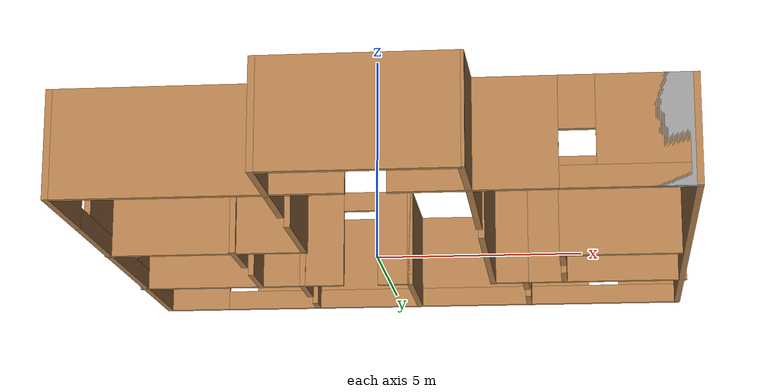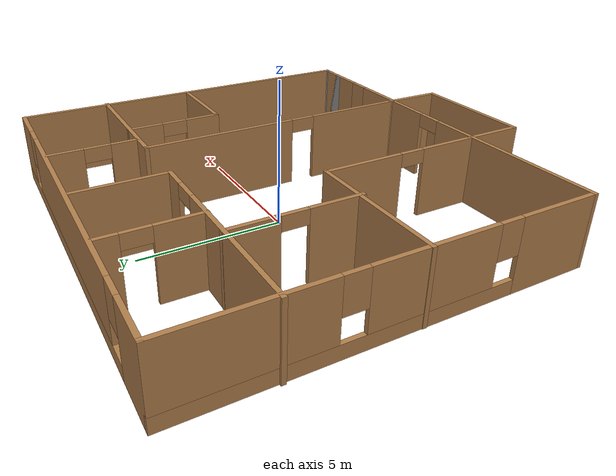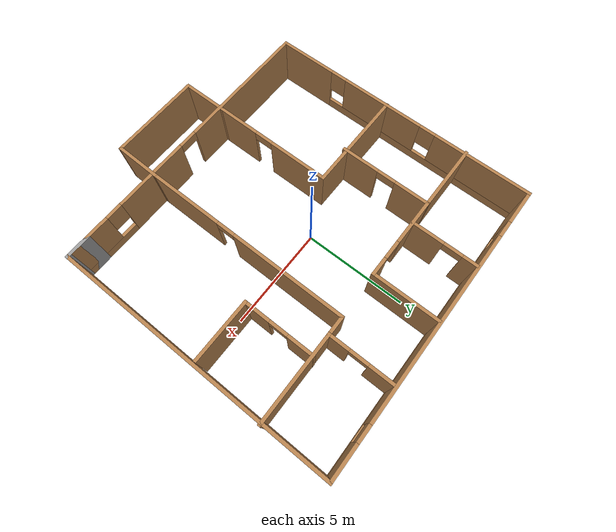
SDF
<?xml version='1.0'?>
<sdf version='1.7'>
  <model name='room2'>
    <pose>0.506721 -0.985056 0 0 -0 0</pose>
    <link name='Wall_0'>
      <pose>-0.12272 -5.67678 0 0 -0 0</pose>
      <visual name='Wall_0_Visual_0'>
        <pose>-3.68769 0 1.25 0 -0 0</pose>
        <geometry>
          <box>
            <size>6.62462 0.15 2.5</size>
          </box>
        </geometry>
        <material>
          <script>
            <uri>file://media/materials/scripts/gazebo.material</uri>
            <name>Gazebo/Wood</name>
          </script>
          <ambient>1 1 1 1</ambient>
        </material>
        <meta>
          <layer>0</layer>
        </meta>
      </visual>
      <collision name='Wall_0_Collision_0'>
        <geometry>
          <box>
            <size>6.62462 0.15 2.5</size>
          </box>
        </geometry>
        <pose>-3.68769 0 1.25 0 -0 0</pose>
      </collision>
      <visual name='Wall_0_Visual_1'>
        <pose>2.3633 0 1.25 0 -0 0</pose>
        <geometry>
          <box>
            <size>3.67735 0.15 2.5</size>
          </box>
        </geometry>
        <material>
          <script>
            <uri>file://media/materials/scripts/gazebo.material</uri>
            <name>Gazebo/Wood</name>
          </script>
          <ambient>1 1 1 1</ambient>
        </material>
        <meta>
          <layer>0</layer>
        </meta>
      </visual>
      <collision name='Wall_0_Collision_1'>
        <geometry>
          <box>
            <size>3.67735 0.15 2.5</size>
          </box>
        </geometry>
        <pose>2.3633 0 1.25 0 -0 0</pose>
      </collision>
      <visual name='Wall_0_Visual_2'>
        <pose>5.60099 0 0.25 0 -0 0</pose>
        <geometry>
          <box>
            <size>2.79802 0.15 0.5</size>
          </box>
        </geometry>
        <material>
          <script>
            <uri>file://media/materials/scripts/gazebo.material</uri>
            <name>Gazebo/Wood</name>
          </script>
          <ambient>1 1 1 1</ambient>
        </material>
        <meta>
          <layer>0</layer>
        </meta>
      </visual>
      <collision name='Wall_0_Collision_2'>
        <geometry>
          <box>
            <size>2.79802 0.15 0.5</size>
          </box>
        </geometry>
        <pose>5.60099 0 0.25 0 -0 0</pose>
      </collision>
      <visual name='Wall_0_Visual_3'>
        <pose>6.00099 0 1.5 0 -0 0</pose>
        <geometry>
          <box>
            <size>1.99802 0.15 2</size>
          </box>
        </geometry>
        <material>
          <script>
            <uri>file://media/materials/scripts/gazebo.material</uri>
            <name>Gazebo/Wood</name>
          </script>
          <ambient>1 1 1 1</ambient>
        </material>
        <meta>
          <layer>0</layer>
        </meta>
      </visual>
      <collision name='Wall_0_Collision_3'>
        <geometry>
          <box>
            <size>1.99802 0.15 2</size>
          </box>
        </geometry>
        <pose>6.00099 0 1.5 0 -0 0</pose>
      </collision>
      <visual name='Wall_0_Visual_4'>
        <pose>4.60198 0 1.9 0 -0 0</pose>
        <geometry>
          <box>
            <size>0.8 0.15 1.2</size>
          </box>
        </geometry>
        <material>
          <script>
            <uri>file://media/materials/scripts/gazebo.material</uri>
            <name>Gazebo/Wood</name>
          </script>
          <ambient>1 1 1 1</ambient>
        </material>
        <meta>
          <layer>0</layer>
        </meta>
      </visual>
      <collision name='Wall_0_Collision_4'>
        <geometry>
          <box>
            <size>0.8 0.15 1.2</size>
          </box>
        </geometry>
        <pose>4.60198 0 1.9 0 -0 0</pose>
      </collision>
      <visual name='Wall_0_Visual_5'>
        <pose>0.074622 0 2.25 0 -0 0</pose>
        <geometry>
          <box>
            <size>0.9 0.15 0.5</size>
          </box>
        </geometry>
        <material>
          <script>
            <uri>file://media/materials/scripts/gazebo.material</uri>
            <name>Gazebo/Wood</name>
          </script>
          <ambient>1 1 1 1</ambient>
        </material>
        <meta>
          <layer>0</layer>
        </meta>
      </visual>
      <collision name='Wall_0_Collision_5'>
        <geometry>
          <box>
            <size>0.9 0.15 0.5</size>
          </box>
        </geometry>
        <pose>0.074622 0 2.25 0 -0 0</pose>
      </collision>
    </link>
    <link name='Wall_10'>
      <pose>-2.8597 6.03777 0 0 -0 1.5708</pose>
      <visual name='Wall_10_Visual_0'>
        <pose>-0.82144 0 1.25 0 -0 0</pose>
        <geometry>
          <box>
            <size>1.60712 0.15 2.5</size>
          </box>
        </geometry>
        <material>
          <script>
            <uri>file://media/materials/scripts/gazebo.material</uri>
            <name>Gazebo/Wood</name>
          </script>
          <ambient>1 1 1 1</ambient>
        </material>
        <meta>
          <layer>0</layer>
        </meta>
      </visual>
      <collision name='Wall_10_Collision_0'>
        <geometry>
          <box>
            <size>1.60712 0.15 2.5</size>
          </box>
        </geometry>
        <pose>-0.82144 0 1.25 0 -0 0</pose>
      </collision>
      <visual name='Wall_10_Visual_1'>
        <pose>1.25356 0 1.25 0 -0 0</pose>
        <geometry>
          <box>
            <size>0.74288 0.15 2.5</size>
          </box>
        </geometry>
        <material>
          <script>
            <uri>file://media/materials/scripts/gazebo.material</uri>
            <name>Gazebo/Wood</name>
          </script>
          <ambient>1 1 1 1</ambient>
        </material>
        <meta>
          <layer>0</layer>
        </meta>
      </visual>
      <collision name='Wall_10_Collision_1'>
        <geometry>
          <box>
            <size>0.74288 0.15 2.5</size>
          </box>
        </geometry>
        <pose>1.25356 0 1.25 0 -0 0</pose>
      </collision>
      <visual name='Wall_10_Visual_2'>
        <pose>0.43212 0 2.25 0 -0 0</pose>
        <geometry>
          <box>
            <size>0.9 0.15 0.5</size>
          </box>
        </geometry>
        <material>
          <script>
            <uri>file://media/materials/scripts/gazebo.material</uri>
            <name>Gazebo/Wood</name>
          </script>
          <ambient>1 1 1 1</ambient>
        </material>
        <meta>
          <layer>0</layer>
        </meta>
      </visual>
      <collision name='Wall_10_Collision_2'>
        <geometry>
          <box>
            <size>0.9 0.15 0.5</size>
          </box>
        </geometry>
        <pose>0.43212 0 2.25 0 -0 0</pose>
      </collision>
    </link>
    <link name='Wall_12'>
      <collision name='Wall_12_Collision'>
        <geometry>
          <box>
            <size>5 0.15 2.5</size>
          </box>
        </geometry>
        <pose>0 0 1.25 0 -0 0</pose>
      </collision>
      <visual name='Wall_12_Visual'>
        <pose>0 0 1.25 0 -0 0</pose>
        <geometry>
          <box>
            <size>5 0.15 2.5</size>
          </box>
        </geometry>
        <material>
          <script>
            <uri>file://media/materials/scripts/gazebo.material</uri>
            <name>Gazebo/Wood</name>
          </script>
          <ambient>1 1 1 1</ambient>
        </material>
        <meta>
          <layer>0</layer>
        </meta>
      </visual>
      <pose>-4.64447 0.278003 0 0 -0 0</pose>
    </link>
    <link name='Wall_13'>
      <pose>-2.21947 -2.647 0 0 -0 -1.5708</pose>
      <visual name='Wall_13_Visual_0'>
        <pose>-1.52666 0 1.25 0 -0 0</pose>
        <geometry>
          <box>
            <size>2.94667 0.15 2.5</size>
          </box>
        </geometry>
        <material>
          <script>
            <uri>file://media/materials/scripts/gazebo.material</uri>
            <name>Gazebo/Wood</name>
          </script>
          <ambient>1 1 1 1</ambient>
        </material>
        <meta>
          <layer>0</layer>
        </meta>
      </visual>
      <collision name='Wall_13_Collision_0'>
        <geometry>
          <box>
            <size>2.94667 0.15 2.5</size>
          </box>
        </geometry>
        <pose>-1.52666 0 1.25 0 -0 0</pose>
      </collision>
      <visual name='Wall_13_Visual_1'>
        <pose>1.92334 0 1.25 0 -0 0</pose>
        <geometry>
          <box>
            <size>2.15333 0.15 2.5</size>
          </box>
        </geometry>
        <material>
          <script>
            <uri>file://media/materials/scripts/gazebo.material</uri>
            <name>Gazebo/Wood</name>
          </script>
          <ambient>1 1 1 1</ambient>
        </material>
        <meta>
          <layer>0</layer>
        </meta>
      </visual>
      <collision name='Wall_13_Collision_1'>
        <geometry>
          <box>
            <size>2.15333 0.15 2.5</size>
          </box>
        </geometry>
        <pose>1.92334 0 1.25 0 -0 0</pose>
      </collision>
      <visual name='Wall_13_Visual_2'>
        <pose>0.39667 0 2.25 0 -0 0</pose>
        <geometry>
          <box>
            <size>0.9 0.15 0.5</size>
          </box>
        </geometry>
        <material>
          <script>
            <uri>file://media/materials/scripts/gazebo.material</uri>
            <name>Gazebo/Wood</name>
          </script>
          <ambient>1 1 1 1</ambient>
        </material>
        <meta>
          <layer>0</layer>
        </meta>
      </visual>
      <collision name='Wall_13_Collision_2'>
        <geometry>
          <box>
            <size>0.9 0.15 0.5</size>
          </box>
        </geometry>
        <pose>0.39667 0 2.25 0 -0 0</pose>
      </collision>
    </link>
    <link name='Wall_15'>
      <pose>-3.96997 2.3359 0 0 -0 -1.5708</pose>
      <visual name='Wall_15_Visual_0'>
        <pose>-1.3822 0 1.25 0 -0 0</pose>
        <geometry>
          <box>
            <size>1.7356 0.15 2.5</size>
          </box>
        </geometry>
        <material>
          <script>
            <uri>file://media/materials/scripts/gazebo.material</uri>
            <name>Gazebo/Wood</name>
          </script>
          <ambient>1 1 1 1</ambient>
        </material>
        <meta>
          <layer>0</layer>
        </meta>
      </visual>
      <collision name='Wall_15_Collision_0'>
        <geometry>
          <box>
            <size>1.7356 0.15 2.5</size>
          </box>
        </geometry>
        <pose>-1.3822 0 1.25 0 -0 0</pose>
      </collision>
      <visual name='Wall_15_Visual_1'>
        <pose>1.3178 0 1.25 0 -0 0</pose>
        <geometry>
          <box>
            <size>1.8644 0.15 2.5</size>
          </box>
        </geometry>
        <material>
          <script>
            <uri>file://media/materials/scripts/gazebo.material</uri>
            <name>Gazebo/Wood</name>
          </script>
          <ambient>1 1 1 1</ambient>
        </material>
        <meta>
          <layer>0</layer>
        </meta>
      </visual>
      <collision name='Wall_15_Collision_1'>
        <geometry>
          <box>
            <size>1.8644 0.15 2.5</size>
          </box>
        </geometry>
        <pose>1.3178 0 1.25 0 -0 0</pose>
      </collision>
      <visual name='Wall_15_Visual_2'>
        <pose>-0.064404 0 2.25 0 -0 0</pose>
        <geometry>
          <box>
            <size>0.9 0.15 0.5</size>
          </box>
        </geometry>
        <material>
          <script>
            <uri>file://media/materials/scripts/gazebo.material</uri>
            <name>Gazebo/Wood</name>
          </script>
          <ambient>1 1 1 1</ambient>
        </material>
        <meta>
          <layer>0</layer>
        </meta>
      </visual>
      <collision name='Wall_15_Collision_2'>
        <geometry>
          <box>
            <size>0.9 0.15 0.5</size>
          </box>
        </geometry>
        <pose>-0.064404 0 2.25 0 -0 0</pose>
      </collision>
    </link>
    <link name='Wall_17'>
      <pose>3.01547 6.10667 0 0 -0 -1.5708</pose>
      <visual name='Wall_17_Visual_0'>
        <pose>-0.974392 0 1.25 0 -0 0</pose>
        <geometry>
          <box>
            <size>1.30122 0.15 2.5</size>
          </box>
        </geometry>
        <material>
          <script>
            <uri>file://media/materials/scripts/gazebo.material</uri>
            <name>Gazebo/Wood</name>
          </script>
          <ambient>1 1 1 1</ambient>
        </material>
        <meta>
          <layer>0</layer>
        </meta>
      </visual>
      <collision name='Wall_17_Collision_0'>
        <geometry>
          <box>
            <size>1.30122 0.15 2.5</size>
          </box>
        </geometry>
        <pose>-0.974392 0 1.25 0 -0 0</pose>
      </collision>
      <visual name='Wall_17_Visual_1'>
        <pose>1.10061 0 1.25 0 -0 0</pose>
        <geometry>
          <box>
            <size>1.04878 0.15 2.5</size>
          </box>
        </geometry>
        <material>
          <script>
            <uri>file://media/materials/scripts/gazebo.material</uri>
            <name>Gazebo/Wood</name>
          </script>
          <ambient>1 1 1 1</ambient>
        </material>
        <meta>
          <layer>0</layer>
        </meta>
      </visual>
      <collision name='Wall_17_Collision_1'>
        <geometry>
          <box>
            <size>1.04878 0.15 2.5</size>
          </box>
        </geometry>
        <pose>1.10061 0 1.25 0 -0 0</pose>
      </collision>
      <visual name='Wall_17_Visual_2'>
        <pose>0.126216 0 2.25 0 -0 0</pose>
        <geometry>
          <box>
            <size>0.9 0.15 0.5</size>
          </box>
        </geometry>
        <material>
          <script>
            <uri>file://media/materials/scripts/gazebo.material</uri>
            <name>Gazebo/Wood</name>
          </script>
          <ambient>1 1 1 1</ambient>
        </material>
        <meta>
          <layer>0</layer>
        </meta>
      </visual>
      <collision name='Wall_17_Collision_2'>
        <geometry>
          <box>
            <size>0.9 0.15 0.5</size>
          </box>
        </geometry>
        <pose>0.126216 0 2.25 0 -0 0</pose>
      </collision>
    </link>
    <link name='Wall_18'>
      <collision name='Wall_18_Collision'>
        <geometry>
          <box>
            <size>4.25 0.15 2.5</size>
          </box>
        </geometry>
        <pose>0 0 1.25 0 -0 0</pose>
      </collision>
      <visual name='Wall_18_Visual'>
        <pose>0 0 1.25 0 -0 0</pose>
        <geometry>
          <box>
            <size>4.25 0.15 2.5</size>
          </box>
        </geometry>
        <material>
          <script>
            <uri>file://media/materials/scripts/gazebo.material</uri>
            <name>Gazebo/Wood</name>
          </script>
          <ambient>1 1 1 1</ambient>
        </material>
        <meta>
          <layer>0</layer>
        </meta>
      </visual>
      <pose>5.06548 4.55667 0 0 -0 0</pose>
    </link>
    <link name='Wall_2'>
      <pose>-7.04772 0.998216 0 0 -0 1.5708</pose>
      <visual name='Wall_2_Visual_0'>
        <pose>-5.29004 0 1.25 0 -0 0</pose>
        <geometry>
          <box>
            <size>2.91992 0.15 2.5</size>
          </box>
        </geometry>
        <material>
          <script>
            <uri>file://media/materials/scripts/gazebo.material</uri>
            <name>Gazebo/Wood</name>
          </script>
          <ambient>1 1 1 1</ambient>
        </material>
        <meta>
          <layer>0</layer>
        </meta>
      </visual>
      <collision name='Wall_2_Collision_0'>
        <geometry>
          <box>
            <size>2.91992 0.15 2.5</size>
          </box>
        </geometry>
        <pose>-5.29004 0 1.25 0 -0 0</pose>
      </collision>
      <visual name='Wall_2_Visual_1'>
        <pose>1.45996 0 0.25 0 -0 0</pose>
        <geometry>
          <box>
            <size>10.5801 0.15 0.5</size>
          </box>
        </geometry>
        <material>
          <script>
            <uri>file://media/materials/scripts/gazebo.material</uri>
            <name>Gazebo/Wood</name>
          </script>
          <ambient>1 1 1 1</ambient>
        </material>
        <meta>
          <layer>0</layer>
        </meta>
      </visual>
      <collision name='Wall_2_Collision_1'>
        <geometry>
          <box>
            <size>10.5801 0.15 0.5</size>
          </box>
        </geometry>
        <pose>1.45996 0 0.25 0 -0 0</pose>
      </collision>
      <visual name='Wall_2_Visual_2'>
        <pose>-0.95227 0 1.5 0 -0 0</pose>
        <geometry>
          <box>
            <size>4.15562 0.15 2</size>
          </box>
        </geometry>
        <material>
          <script>
            <uri>file://media/materials/scripts/gazebo.material</uri>
            <name>Gazebo/Wood</name>
          </script>
          <ambient>1 1 1 1</ambient>
        </material>
        <meta>
          <layer>0</layer>
        </meta>
      </visual>
      <collision name='Wall_2_Collision_2'>
        <geometry>
          <box>
            <size>4.15562 0.15 2</size>
          </box>
        </geometry>
        <pose>-0.95227 0 1.5 0 -0 0</pose>
      </collision>
      <visual name='Wall_2_Visual_3'>
        <pose>4.33777 0 1.5 0 -0 0</pose>
        <geometry>
          <box>
            <size>4.82446 0.15 2</size>
          </box>
        </geometry>
        <material>
          <script>
            <uri>file://media/materials/scripts/gazebo.material</uri>
            <name>Gazebo/Wood</name>
          </script>
          <ambient>1 1 1 1</ambient>
        </material>
        <meta>
          <layer>0</layer>
        </meta>
      </visual>
      <collision name='Wall_2_Collision_3'>
        <geometry>
          <box>
            <size>4.82446 0.15 2</size>
          </box>
        </geometry>
        <pose>4.33777 0 1.5 0 -0 0</pose>
      </collision>
      <visual name='Wall_2_Visual_4'>
        <pose>-3.43008 0 1.9 0 -0 0</pose>
        <geometry>
          <box>
            <size>0.8 0.15 1.2</size>
          </box>
        </geometry>
        <material>
          <script>
            <uri>file://media/materials/scripts/gazebo.material</uri>
            <name>Gazebo/Wood</name>
          </script>
          <ambient>1 1 1 1</ambient>
        </material>
        <meta>
          <layer>0</layer>
        </meta>
      </visual>
      <collision name='Wall_2_Collision_4'>
        <geometry>
          <box>
            <size>0.8 0.15 1.2</size>
          </box>
        </geometry>
        <pose>-3.43008 0 1.9 0 -0 0</pose>
      </collision>
      <visual name='Wall_2_Visual_5'>
        <pose>1.52554 0 1.9 0 -0 0</pose>
        <geometry>
          <box>
            <size>0.8 0.15 1.2</size>
          </box>
        </geometry>
        <material>
          <script>
            <uri>file://media/materials/scripts/gazebo.material</uri>
            <name>Gazebo/Wood</name>
          </script>
          <ambient>1 1 1 1</ambient>
        </material>
        <meta>
          <layer>0</layer>
        </meta>
      </visual>
      <collision name='Wall_2_Collision_5'>
        <geometry>
          <box>
            <size>0.8 0.15 1.2</size>
          </box>
        </geometry>
        <pose>1.52554 0 1.9 0 -0 0</pose>
      </collision>
    </link>
    <link name='Wall_20'>
      <collision name='Wall_20_Collision'>
        <geometry>
          <box>
            <size>1 0.15 2.5</size>
          </box>
        </geometry>
        <pose>0 0 1.25 0 -0 0</pose>
      </collision>
      <visual name='Wall_20_Visual'>
        <pose>0 0 1.25 0 -0 0</pose>
        <geometry>
          <box>
            <size>1 0.15 2.5</size>
          </box>
        </geometry>
        <material>
          <script>
            <uri>file://media/materials/scripts/gazebo.material</uri>
            <name>Gazebo/Wood</name>
          </script>
          <ambient>1 1 1 1</ambient>
        </material>
        <meta>
          <layer>0</layer>
        </meta>
      </visual>
      <pose>2.59048 4.55667 0 0 -0 3.14159</pose>
    </link>
    <link name='Wall_21'>
      <pose>2.16547 -0.493333 0 0 -0 -1.5708</pose>
      <visual name='Wall_21_Visual_0'>
        <pose>-2.30768 0 1.25 0 -0 0</pose>
        <geometry>
          <box>
            <size>5.63464 0.15 2.5</size>
          </box>
        </geometry>
        <material>
          <script>
            <uri>file://media/materials/scripts/gazebo.material</uri>
            <name>Gazebo/Wood</name>
          </script>
          <ambient>1 1 1 1</ambient>
        </material>
        <meta>
          <layer>0</layer>
        </meta>
      </visual>
      <collision name='Wall_21_Collision_0'>
        <geometry>
          <box>
            <size>5.63464 0.15 2.5</size>
          </box>
        </geometry>
        <pose>-2.30768 0 1.25 0 -0 0</pose>
      </collision>
      <visual name='Wall_21_Visual_1'>
        <pose>3.26732 0 1.25 0 -0 0</pose>
        <geometry>
          <box>
            <size>3.71536 0.15 2.5</size>
          </box>
        </geometry>
        <material>
          <script>
            <uri>file://media/materials/scripts/gazebo.material</uri>
            <name>Gazebo/Wood</name>
          </script>
          <ambient>1 1 1 1</ambient>
        </material>
        <meta>
          <layer>0</layer>
        </meta>
      </visual>
      <collision name='Wall_21_Collision_1'>
        <geometry>
          <box>
            <size>3.71536 0.15 2.5</size>
          </box>
        </geometry>
        <pose>3.26732 0 1.25 0 -0 0</pose>
      </collision>
      <visual name='Wall_21_Visual_2'>
        <pose>0.959642 0 2.25 0 -0 0</pose>
        <geometry>
          <box>
            <size>0.9 0.15 0.5</size>
          </box>
        </geometry>
        <material>
          <script>
            <uri>file://media/materials/scripts/gazebo.material</uri>
            <name>Gazebo/Wood</name>
          </script>
          <ambient>1 1 1 1</ambient>
        </material>
        <meta>
          <layer>0</layer>
        </meta>
      </visual>
      <collision name='Wall_21_Collision_2'>
        <geometry>
          <box>
            <size>0.9 0.15 0.5</size>
          </box>
        </geometry>
        <pose>0.959642 0 2.25 0 -0 0</pose>
      </collision>
    </link>
    <link name='Wall_23'>
      <pose>4.02937 2.89495 0 0 -0 -1.5708</pose>
      <visual name='Wall_23_Visual_0'>
        <pose>-1.09794 0 1.25 0 -0 0</pose>
        <geometry>
          <box>
            <size>1.30411 0.15 2.5</size>
          </box>
        </geometry>
        <material>
          <script>
            <uri>file://media/materials/scripts/gazebo.material</uri>
            <name>Gazebo/Wood</name>
          </script>
          <ambient>1 1 1 1</ambient>
        </material>
        <meta>
          <layer>0</layer>
        </meta>
      </visual>
      <collision name='Wall_23_Collision_0'>
        <geometry>
          <box>
            <size>1.30411 0.15 2.5</size>
          </box>
        </geometry>
        <pose>-1.09794 0 1.25 0 -0 0</pose>
      </collision>
      <visual name='Wall_23_Visual_1'>
        <pose>1.10206 0 1.25 0 -0 0</pose>
        <geometry>
          <box>
            <size>1.29588 0.15 2.5</size>
          </box>
        </geometry>
        <material>
          <script>
            <uri>file://media/materials/scripts/gazebo.material</uri>
            <name>Gazebo/Wood</name>
          </script>
          <ambient>1 1 1 1</ambient>
        </material>
        <meta>
          <layer>0</layer>
        </meta>
      </visual>
      <collision name='Wall_23_Collision_1'>
        <geometry>
          <box>
            <size>1.29588 0.15 2.5</size>
          </box>
        </geometry>
        <pose>1.10206 0 1.25 0 -0 0</pose>
      </collision>
      <visual name='Wall_23_Visual_2'>
        <pose>0.004115 0 2.25 0 -0 0</pose>
        <geometry>
          <box>
            <size>0.9 0.15 0.5</size>
          </box>
        </geometry>
        <material>
          <script>
            <uri>file://media/materials/scripts/gazebo.material</uri>
            <name>Gazebo/Wood</name>
          </script>
          <ambient>1 1 1 1</ambient>
        </material>
        <meta>
          <layer>0</layer>
        </meta>
      </visual>
      <collision name='Wall_23_Collision_2'>
        <geometry>
          <box>
            <size>0.9 0.15 0.5</size>
          </box>
        </geometry>
        <pose>0.004115 0 2.25 0 -0 0</pose>
      </collision>
    </link>
    <link name='Wall_24'>
      <collision name='Wall_24_Collision'>
        <geometry>
          <box>
            <size>3 0.15 2.5</size>
          </box>
        </geometry>
        <pose>0 0 1.25 0 -0 0</pose>
      </collision>
      <visual name='Wall_24_Visual'>
        <pose>0 0 1.25 0 -0 0</pose>
        <geometry>
          <box>
            <size>3 0.15 2.5</size>
          </box>
        </geometry>
        <material>
          <script>
            <uri>file://media/materials/scripts/gazebo.material</uri>
            <name>Gazebo/Wood</name>
          </script>
          <ambient>1 1 1 1</ambient>
        </material>
        <meta>
          <layer>0</layer>
        </meta>
      </visual>
      <pose>5.45437 1.21995 0 0 -0 0</pose>
    </link>
    <link name='Wall_26'>
      <collision name='Wall_26_Collision'>
        <geometry>
          <box>
            <size>2.25 0.15 2.5</size>
          </box>
        </geometry>
        <pose>0 0 1.25 0 -0 0</pose>
      </collision>
      <visual name='Wall_26_Visual'>
        <pose>0 0 1.25 0 -0 0</pose>
        <geometry>
          <box>
            <size>2.25 0.15 2.5</size>
          </box>
        </geometry>
        <material>
          <script>
            <uri>file://media/materials/scripts/gazebo.material</uri>
            <name>Gazebo/Wood</name>
          </script>
          <ambient>1 1 1 1</ambient>
        </material>
        <meta>
          <layer>0</layer>
        </meta>
      </visual>
      <pose>-2.21947 -6.622 0 0 -0 -1.5708</pose>
    </link>
    <link name='Wall_27'>
      <collision name='Wall_27_Collision'>
        <geometry>
          <box>
            <size>4.5 0.15 2.5</size>
          </box>
        </geometry>
        <pose>0 0 1.25 0 -0 0</pose>
      </collision>
      <visual name='Wall_27_Visual'>
        <pose>0 0 1.25 0 -0 0</pose>
        <geometry>
          <box>
            <size>4.5 0.15 2.5</size>
          </box>
        </geometry>
        <material>
          <script>
            <uri>file://media/materials/scripts/gazebo.material</uri>
            <name>Gazebo/Wood</name>
          </script>
          <ambient>1 1 1 1</ambient>
        </material>
        <meta>
          <layer>0</layer>
        </meta>
      </visual>
      <pose>-0.04447 -7.672 0 0 -0 0</pose>
    </link>
    <link name='Wall_28'>
      <collision name='Wall_28_Collision'>
        <geometry>
          <box>
            <size>2.27895 0.15 2.5</size>
          </box>
        </geometry>
        <pose>0 0 1.25 0 -0 0</pose>
      </collision>
      <visual name='Wall_28_Visual'>
        <pose>0 0 1.25 0 -0 0</pose>
        <geometry>
          <box>
            <size>2.27895 0.15 2.5</size>
          </box>
        </geometry>
        <material>
          <script>
            <uri>file://media/materials/scripts/gazebo.material</uri>
            <name>Gazebo/Wood</name>
          </script>
          <ambient>1 1 1 1</ambient>
        </material>
        <meta>
          <layer>0</layer>
        </meta>
      </visual>
      <pose>2.148 -6.60766 0 0 -0 1.55438</pose>
    </link>
    <link name='Wall_3'>
      <pose>0.00228 7.67322 0 0 -0 0</pose>
      <visual name='Wall_3_Visual_0'>
        <pose>-6.2502 0 1.25 0 -0 0</pose>
        <geometry>
          <box>
            <size>1.7496 0.15 2.5</size>
          </box>
        </geometry>
        <material>
          <script>
            <uri>file://media/materials/scripts/gazebo.material</uri>
            <name>Gazebo/Wood</name>
          </script>
          <ambient>1 1 1 1</ambient>
        </material>
        <meta>
          <layer>0</layer>
        </meta>
      </visual>
      <collision name='Wall_3_Collision_0'>
        <geometry>
          <box>
            <size>1.7496 0.15 2.5</size>
          </box>
        </geometry>
        <pose>-6.2502 0 1.25 0 -0 0</pose>
      </collision>
      <visual name='Wall_3_Visual_1'>
        <pose>0.874798 0 0.25 0 -0 0</pose>
        <geometry>
          <box>
            <size>12.5004 0.15 0.5</size>
          </box>
        </geometry>
        <material>
          <script>
            <uri>file://media/materials/scripts/gazebo.material</uri>
            <name>Gazebo/Wood</name>
          </script>
          <ambient>1 1 1 1</ambient>
        </material>
        <meta>
          <layer>0</layer>
        </meta>
      </visual>
      <collision name='Wall_3_Collision_1'>
        <geometry>
          <box>
            <size>12.5004 0.15 0.5</size>
          </box>
        </geometry>
        <pose>0.874798 0 0.25 0 -0 0</pose>
      </collision>
      <visual name='Wall_3_Visual_2'>
        <pose>0.041393 0 1.5 0 -0 0</pose>
        <geometry>
          <box>
            <size>9.23359 0.15 2</size>
          </box>
        </geometry>
        <material>
          <script>
            <uri>file://media/materials/scripts/gazebo.material</uri>
            <name>Gazebo/Wood</name>
          </script>
          <ambient>1 1 1 1</ambient>
        </material>
        <meta>
          <layer>0</layer>
        </meta>
      </visual>
      <collision name='Wall_3_Collision_2'>
        <geometry>
          <box>
            <size>9.23359 0.15 2</size>
          </box>
        </geometry>
        <pose>0.041393 0 1.5 0 -0 0</pose>
      </collision>
      <visual name='Wall_3_Visual_3'>
        <pose>6.2916 0 1.5 0 -0 0</pose>
        <geometry>
          <box>
            <size>1.66681 0.15 2</size>
          </box>
        </geometry>
        <material>
          <script>
            <uri>file://media/materials/scripts/gazebo.material</uri>
            <name>Gazebo/Wood</name>
          </script>
          <ambient>1 1 1 1</ambient>
        </material>
        <meta>
          <layer>0</layer>
        </meta>
      </visual>
      <collision name='Wall_3_Collision_3'>
        <geometry>
          <box>
            <size>1.66681 0.15 2</size>
          </box>
        </geometry>
        <pose>6.2916 0 1.5 0 -0 0</pose>
      </collision>
      <visual name='Wall_3_Visual_4'>
        <pose>-4.97541 0 1.9 0 -0 0</pose>
        <geometry>
          <box>
            <size>0.8 0.15 1.2</size>
          </box>
        </geometry>
        <material>
          <script>
            <uri>file://media/materials/scripts/gazebo.material</uri>
            <name>Gazebo/Wood</name>
          </script>
          <ambient>1 1 1 1</ambient>
        </material>
        <meta>
          <layer>0</layer>
        </meta>
      </visual>
      <collision name='Wall_3_Collision_4'>
        <geometry>
          <box>
            <size>0.8 0.15 1.2</size>
          </box>
        </geometry>
        <pose>-4.97541 0 1.9 0 -0 0</pose>
      </collision>
      <visual name='Wall_3_Visual_5'>
        <pose>5.05819 0 1.9 0 -0 0</pose>
        <geometry>
          <box>
            <size>0.8 0.15 1.2</size>
          </box>
        </geometry>
        <material>
          <script>
            <uri>file://media/materials/scripts/gazebo.material</uri>
            <name>Gazebo/Wood</name>
          </script>
          <ambient>1 1 1 1</ambient>
        </material>
        <meta>
          <layer>0</layer>
        </meta>
      </visual>
      <collision name='Wall_3_Collision_5'>
        <geometry>
          <box>
            <size>0.8 0.15 1.2</size>
          </box>
        </geometry>
        <pose>5.05819 0 1.9 0 -0 0</pose>
      </collision>
    </link>
    <link name='Wall_4'>
      <collision name='Wall_4_Collision'>
        <geometry>
          <box>
            <size>13.5 0.15 2.5</size>
          </box>
        </geometry>
        <pose>0 0 1.25 0 -0 0</pose>
      </collision>
      <visual name='Wall_4_Visual'>
        <pose>0 0 1.25 0 -0 0</pose>
        <geometry>
          <box>
            <size>13.5 0.15 2.5</size>
          </box>
        </geometry>
        <material>
          <script>
            <uri>file://media/materials/scripts/gazebo.material</uri>
            <name>Gazebo/Wood</name>
          </script>
          <ambient>1 1 1 1</ambient>
        </material>
        <meta>
          <layer>0</layer>
        </meta>
      </visual>
      <pose>7.05228 0.998216 0 0 -0 -1.5708</pose>
    </link>
    <link name='Wall_5'>
      <collision name='Wall_5_Collision'>
        <geometry>
          <box>
            <size>1.25 0.15 2.5</size>
          </box>
        </geometry>
        <pose>0 0 1.25 0 -0 0</pose>
      </collision>
      <visual name='Wall_5_Visual'>
        <pose>0 0 1.25 0 -0 0</pose>
        <geometry>
          <box>
            <size>1.25 0.15 2.5</size>
          </box>
        </geometry>
        <material>
          <script>
            <uri>file://media/materials/scripts/gazebo.material</uri>
            <name>Gazebo/Grey</name>
          </script>
          <ambient>1 1 1 1</ambient>
        </material>
        <meta>
          <layer>0</layer>
        </meta>
      </visual>
      <pose>6.50228 -5.67678 0 0 -0 3.14159</pose>
    </link>
    <link name='Wall_7'>
      <pose>-3.56548 4.49978 0 0 -0 0</pose>
      <visual name='Wall_7_Visual_0'>
        <pose>-0.912883 0 1.25 0 -0 0</pose>
        <geometry>
          <box>
            <size>5.42424 0.15 2.5</size>
          </box>
        </geometry>
        <material>
          <script>
            <uri>file://media/materials/scripts/gazebo.material</uri>
            <name>Gazebo/Wood</name>
          </script>
          <ambient>1 1 1 1</ambient>
        </material>
        <meta>
          <layer>0</layer>
        </meta>
      </visual>
      <collision name='Wall_7_Collision_0'>
        <geometry>
          <box>
            <size>5.42424 0.15 2.5</size>
          </box>
        </geometry>
        <pose>-0.912883 0 1.25 0 -0 0</pose>
      </collision>
      <visual name='Wall_7_Visual_1'>
        <pose>3.16212 0 1.25 0 -0 0</pose>
        <geometry>
          <box>
            <size>0.925765 0.15 2.5</size>
          </box>
        </geometry>
        <material>
          <script>
            <uri>file://media/materials/scripts/gazebo.material</uri>
            <name>Gazebo/Wood</name>
          </script>
          <ambient>1 1 1 1</ambient>
        </material>
        <meta>
          <layer>0</layer>
        </meta>
      </visual>
      <collision name='Wall_7_Collision_1'>
        <geometry>
          <box>
            <size>0.925765 0.15 2.5</size>
          </box>
        </geometry>
        <pose>3.16212 0 1.25 0 -0 0</pose>
      </collision>
      <visual name='Wall_7_Visual_2'>
        <pose>2.24924 0 2.25 0 -0 0</pose>
        <geometry>
          <box>
            <size>0.9 0.15 0.5</size>
          </box>
        </geometry>
        <material>
          <script>
            <uri>file://media/materials/scripts/gazebo.material</uri>
            <name>Gazebo/Wood</name>
          </script>
          <ambient>1 1 1 1</ambient>
        </material>
        <meta>
          <layer>0</layer>
        </meta>
      </visual>
      <collision name='Wall_7_Collision_2'>
        <geometry>
          <box>
            <size>0.9 0.15 0.5</size>
          </box>
        </geometry>
        <pose>2.24924 0 2.25 0 -0 0</pose>
      </collision>
    </link>
    <link name='Wall_8'>
      <collision name='Wall_8_Collision'>
        <geometry>
          <box>
            <size>3.25 0.15 2.5</size>
          </box>
        </geometry>
        <pose>0 0 1.25 0 -0 0</pose>
      </collision>
      <visual name='Wall_8_Visual'>
        <pose>0 0 1.25 0 -0 0</pose>
        <geometry>
          <box>
            <size>3.25 0.15 2.5</size>
          </box>
        </geometry>
        <material>
          <script>
            <uri>file://media/materials/scripts/gazebo.material</uri>
            <name>Gazebo/Wood</name>
          </script>
          <ambient>1 1 1 1</ambient>
        </material>
        <meta>
          <layer>0</layer>
        </meta>
      </visual>
      <pose>-0.015475 6.04978 0 0 -0 1.5708</pose>
    </link>
    <static>1</static>
  </model>
</sdf>
